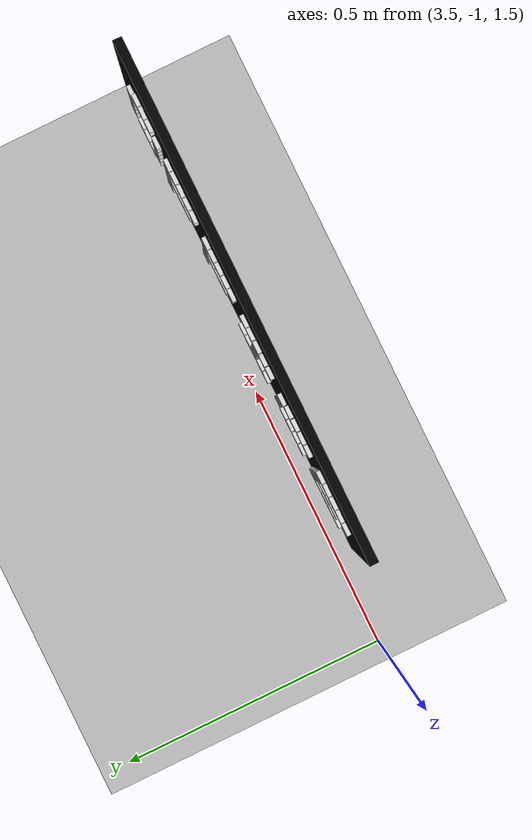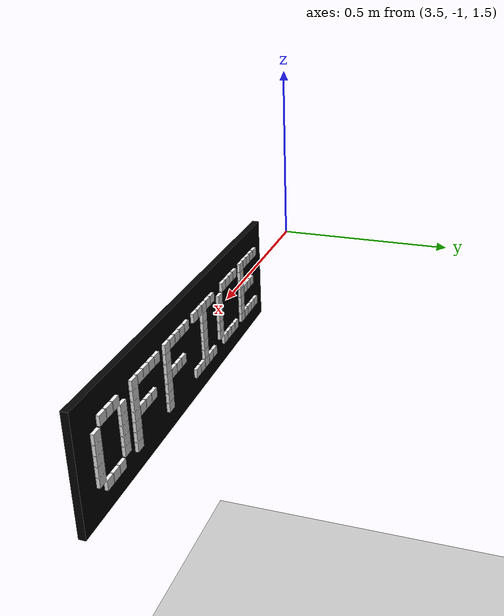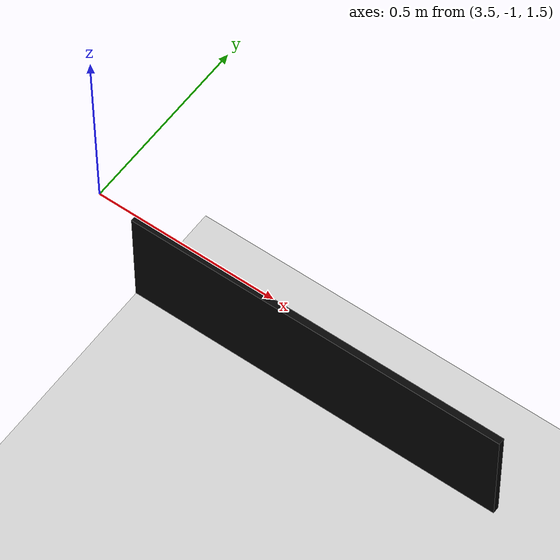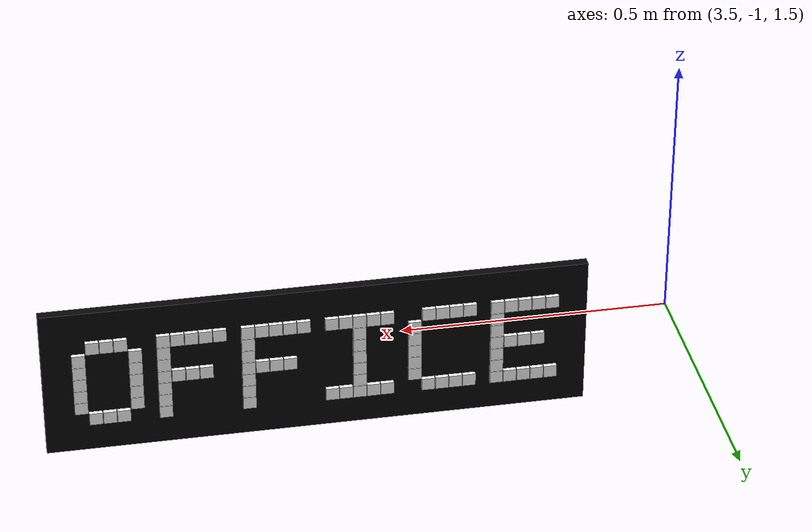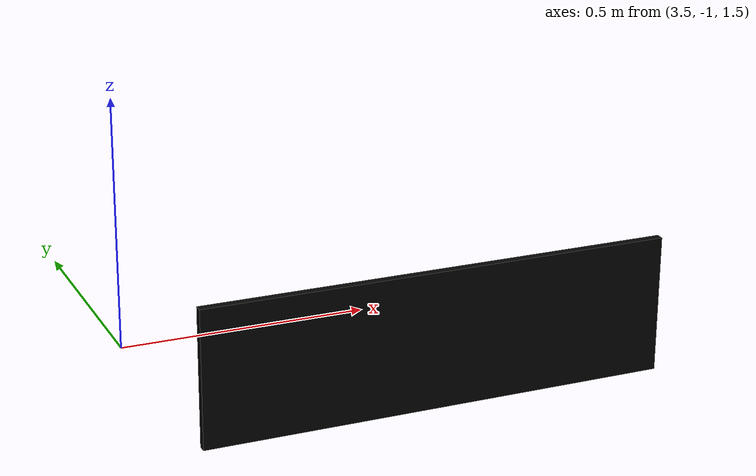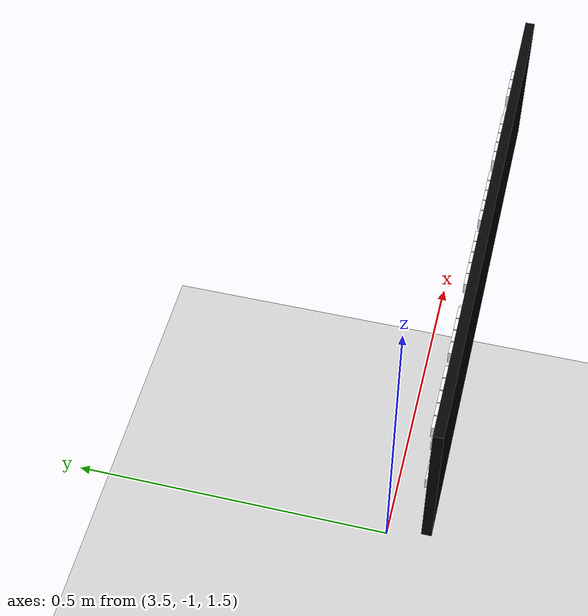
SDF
<sdf version="1.9">
 <world name="default">
  <model name="ground_plane">
   <static>true</static>
   <pose>5.15 0 -0.05 0 0 0</pose>
   <link name="body">
    <collision name="collision"><geometry><box><size>14.3 12 0.1</size></box></geometry></collision>
    <visual name="visual">
     <geometry><box><size>14.3 12 0.1</size></box></geometry>
     <material><ambient>0.8 0.8 0.8 1</ambient><diffuse>0.8 0.8 0.8 1</diffuse></material>
    </visual>
   </link>
  </model>
  <model name="readable_r3geo_base_r009_right_1_entrance_corridor">
   <static>true</static>
   <pose>4.15 -1.05 1.43 0 0 3.14159265359</pose>
   <link name="lettering">
    <visual name="backboard">
     <geometry><box><size>1.02 0.018 0.3</size></box></geometry>
     <material>
      <ambient>.015 .015 .015 1</ambient>
      <diffuse>.015 .015 .015 1</diffuse>
      <emissive>.015 .015 .015 1</emissive>
     </material>
     <cast_shadows>false</cast_shadows>
    </visual>
    <visual name="letter_0_0_1">
     <pose>-0.416 -0.014 0.078 0 0 0</pose>
     <geometry><box><size>0.024439999999999996 0.008 0.024439999999999996</size></box></geometry>
     <material>
      <ambient>.96 .96 .96 1</ambient>
      <diffuse>.96 .96 .96 1</diffuse>
      <emissive>.96 .96 .96 1</emissive>
     </material>
     <cast_shadows>false</cast_shadows>
    </visual>
    <visual name="letter_0_0_2">
     <pose>-0.39 -0.014 0.078 0 0 0</pose>
     <geometry><box><size>0.024439999999999996 0.008 0.024439999999999996</size></box></geometry>
     <material>
      <ambient>.96 .96 .96 1</ambient>
      <diffuse>.96 .96 .96 1</diffuse>
      <emissive>.96 .96 .96 1</emissive>
     </material>
     <cast_shadows>false</cast_shadows>
    </visual>
    <visual name="letter_0_0_3">
     <pose>-0.364 -0.014 0.078 0 0 0</pose>
     <geometry><box><size>0.024439999999999996 0.008 0.024439999999999996</size></box></geometry>
     <material>
      <ambient>.96 .96 .96 1</ambient>
      <diffuse>.96 .96 .96 1</diffuse>
      <emissive>.96 .96 .96 1</emissive>
     </material>
     <cast_shadows>false</cast_shadows>
    </visual>
    <visual name="letter_0_1_0">
     <pose>-0.442 -0.014 0.052 0 0 0</pose>
     <geometry><box><size>0.024439999999999996 0.008 0.024439999999999996</size></box></geometry>
     <material>
      <ambient>.96 .96 .96 1</ambient>
      <diffuse>.96 .96 .96 1</diffuse>
      <emissive>.96 .96 .96 1</emissive>
     </material>
     <cast_shadows>false</cast_shadows>
    </visual>
    <visual name="letter_0_1_4">
     <pose>-0.338 -0.014 0.052 0 0 0</pose>
     <geometry><box><size>0.024439999999999996 0.008 0.024439999999999996</size></box></geometry>
     <material>
      <ambient>.96 .96 .96 1</ambient>
      <diffuse>.96 .96 .96 1</diffuse>
      <emissive>.96 .96 .96 1</emissive>
     </material>
     <cast_shadows>false</cast_shadows>
    </visual>
    <visual name="letter_0_2_0">
     <pose>-0.442 -0.014 0.026 0 0 0</pose>
     <geometry><box><size>0.024439999999999996 0.008 0.024439999999999996</size></box></geometry>
     <material>
      <ambient>.96 .96 .96 1</ambient>
      <diffuse>.96 .96 .96 1</diffuse>
      <emissive>.96 .96 .96 1</emissive>
     </material>
     <cast_shadows>false</cast_shadows>
    </visual>
    <visual name="letter_0_2_4">
     <pose>-0.338 -0.014 0.026 0 0 0</pose>
     <geometry><box><size>0.024439999999999996 0.008 0.024439999999999996</size></box></geometry>
     <material>
      <ambient>.96 .96 .96 1</ambient>
      <diffuse>.96 .96 .96 1</diffuse>
      <emissive>.96 .96 .96 1</emissive>
     </material>
     <cast_shadows>false</cast_shadows>
    </visual>
    <visual name="letter_0_3_0">
     <pose>-0.442 -0.014 0 0 0 0</pose>
     <geometry><box><size>0.024439999999999996 0.008 0.024439999999999996</size></box></geometry>
     <material>
      <ambient>.96 .96 .96 1</ambient>
      <diffuse>.96 .96 .96 1</diffuse>
      <emissive>.96 .96 .96 1</emissive>
     </material>
     <cast_shadows>false</cast_shadows>
    </visual>
    <visual name="letter_0_3_4">
     <pose>-0.338 -0.014 0 0 0 0</pose>
     <geometry><box><size>0.024439999999999996 0.008 0.024439999999999996</size></box></geometry>
     <material>
      <ambient>.96 .96 .96 1</ambient>
      <diffuse>.96 .96 .96 1</diffuse>
      <emissive>.96 .96 .96 1</emissive>
     </material>
     <cast_shadows>false</cast_shadows>
    </visual>
    <visual name="letter_0_4_0">
     <pose>-0.442 -0.014 -0.026 0 0 0</pose>
     <geometry><box><size>0.024439999999999996 0.008 0.024439999999999996</size></box></geometry>
     <material>
      <ambient>.96 .96 .96 1</ambient>
      <diffuse>.96 .96 .96 1</diffuse>
      <emissive>.96 .96 .96 1</emissive>
     </material>
     <cast_shadows>false</cast_shadows>
    </visual>
    <visual name="letter_0_4_4">
     <pose>-0.338 -0.014 -0.026 0 0 0</pose>
     <geometry><box><size>0.024439999999999996 0.008 0.024439999999999996</size></box></geometry>
     <material>
      <ambient>.96 .96 .96 1</ambient>
      <diffuse>.96 .96 .96 1</diffuse>
      <emissive>.96 .96 .96 1</emissive>
     </material>
     <cast_shadows>false</cast_shadows>
    </visual>
    <visual name="letter_0_5_0">
     <pose>-0.442 -0.014 -0.052 0 0 0</pose>
     <geometry><box><size>0.024439999999999996 0.008 0.024439999999999996</size></box></geometry>
     <material>
      <ambient>.96 .96 .96 1</ambient>
      <diffuse>.96 .96 .96 1</diffuse>
      <emissive>.96 .96 .96 1</emissive>
     </material>
     <cast_shadows>false</cast_shadows>
    </visual>
    <visual name="letter_0_5_4">
     <pose>-0.338 -0.014 -0.052 0 0 0</pose>
     <geometry><box><size>0.024439999999999996 0.008 0.024439999999999996</size></box></geometry>
     <material>
      <ambient>.96 .96 .96 1</ambient>
      <diffuse>.96 .96 .96 1</diffuse>
      <emissive>.96 .96 .96 1</emissive>
     </material>
     <cast_shadows>false</cast_shadows>
    </visual>
    <visual name="letter_0_6_1">
     <pose>-0.416 -0.014 -0.078 0 0 0</pose>
     <geometry><box><size>0.024439999999999996 0.008 0.024439999999999996</size></box></geometry>
     <material>
      <ambient>.96 .96 .96 1</ambient>
      <diffuse>.96 .96 .96 1</diffuse>
      <emissive>.96 .96 .96 1</emissive>
     </material>
     <cast_shadows>false</cast_shadows>
    </visual>
    <visual name="letter_0_6_2">
     <pose>-0.39 -0.014 -0.078 0 0 0</pose>
     <geometry><box><size>0.024439999999999996 0.008 0.024439999999999996</size></box></geometry>
     <material>
      <ambient>.96 .96 .96 1</ambient>
      <diffuse>.96 .96 .96 1</diffuse>
      <emissive>.96 .96 .96 1</emissive>
     </material>
     <cast_shadows>false</cast_shadows>
    </visual>
    <visual name="letter_0_6_3">
     <pose>-0.364 -0.014 -0.078 0 0 0</pose>
     <geometry><box><size>0.024439999999999996 0.008 0.024439999999999996</size></box></geometry>
     <material>
      <ambient>.96 .96 .96 1</ambient>
      <diffuse>.96 .96 .96 1</diffuse>
      <emissive>.96 .96 .96 1</emissive>
     </material>
     <cast_shadows>false</cast_shadows>
    </visual>
    <visual name="letter_1_0_0">
     <pose>-0.286 -0.014 0.078 0 0 0</pose>
     <geometry><box><size>0.024439999999999996 0.008 0.024439999999999996</size></box></geometry>
     <material>
      <ambient>.96 .96 .96 1</ambient>
      <diffuse>.96 .96 .96 1</diffuse>
      <emissive>.96 .96 .96 1</emissive>
     </material>
     <cast_shadows>false</cast_shadows>
    </visual>
    <visual name="letter_1_0_1">
     <pose>-0.26 -0.014 0.078 0 0 0</pose>
     <geometry><box><size>0.024439999999999996 0.008 0.024439999999999996</size></box></geometry>
     <material>
      <ambient>.96 .96 .96 1</ambient>
      <diffuse>.96 .96 .96 1</diffuse>
      <emissive>.96 .96 .96 1</emissive>
     </material>
     <cast_shadows>false</cast_shadows>
    </visual>
    <visual name="letter_1_0_2">
     <pose>-0.234 -0.014 0.078 0 0 0</pose>
     <geometry><box><size>0.024439999999999996 0.008 0.024439999999999996</size></box></geometry>
     <material>
      <ambient>.96 .96 .96 1</ambient>
      <diffuse>.96 .96 .96 1</diffuse>
      <emissive>.96 .96 .96 1</emissive>
     </material>
     <cast_shadows>false</cast_shadows>
    </visual>
    <visual name="letter_1_0_3">
     <pose>-0.208 -0.014 0.078 0 0 0</pose>
     <geometry><box><size>0.024439999999999996 0.008 0.024439999999999996</size></box></geometry>
     <material>
      <ambient>.96 .96 .96 1</ambient>
      <diffuse>.96 .96 .96 1</diffuse>
      <emissive>.96 .96 .96 1</emissive>
     </material>
     <cast_shadows>false</cast_shadows>
    </visual>
    <visual name="letter_1_0_4">
     <pose>-0.182 -0.014 0.078 0 0 0</pose>
     <geometry><box><size>0.024439999999999996 0.008 0.024439999999999996</size></box></geometry>
     <material>
      <ambient>.96 .96 .96 1</ambient>
      <diffuse>.96 .96 .96 1</diffuse>
      <emissive>.96 .96 .96 1</emissive>
     </material>
     <cast_shadows>false</cast_shadows>
    </visual>
    <visual name="letter_1_1_0">
     <pose>-0.286 -0.014 0.052 0 0 0</pose>
     <geometry><box><size>0.024439999999999996 0.008 0.024439999999999996</size></box></geometry>
     <material>
      <ambient>.96 .96 .96 1</ambient>
      <diffuse>.96 .96 .96 1</diffuse>
      <emissive>.96 .96 .96 1</emissive>
     </material>
     <cast_shadows>false</cast_shadows>
    </visual>
    <visual name="letter_1_2_0">
     <pose>-0.286 -0.014 0.026 0 0 0</pose>
     <geometry><box><size>0.024439999999999996 0.008 0.024439999999999996</size></box></geometry>
     <material>
      <ambient>.96 .96 .96 1</ambient>
      <diffuse>.96 .96 .96 1</diffuse>
      <emissive>.96 .96 .96 1</emissive>
     </material>
     <cast_shadows>false</cast_shadows>
    </visual>
    <visual name="letter_1_3_0">
     <pose>-0.286 -0.014 0 0 0 0</pose>
     <geometry><box><size>0.024439999999999996 0.008 0.024439999999999996</size></box></geometry>
     <material>
      <ambient>.96 .96 .96 1</ambient>
      <diffuse>.96 .96 .96 1</diffuse>
      <emissive>.96 .96 .96 1</emissive>
     </material>
     <cast_shadows>false</cast_shadows>
    </visual>
    <visual name="letter_1_3_1">
     <pose>-0.26 -0.014 0 0 0 0</pose>
     <geometry><box><size>0.024439999999999996 0.008 0.024439999999999996</size></box></geometry>
     <material>
      <ambient>.96 .96 .96 1</ambient>
      <diffuse>.96 .96 .96 1</diffuse>
      <emissive>.96 .96 .96 1</emissive>
     </material>
     <cast_shadows>false</cast_shadows>
    </visual>
    <visual name="letter_1_3_2">
     <pose>-0.234 -0.014 0 0 0 0</pose>
     <geometry><box><size>0.024439999999999996 0.008 0.024439999999999996</size></box></geometry>
     <material>
      <ambient>.96 .96 .96 1</ambient>
      <diffuse>.96 .96 .96 1</diffuse>
      <emissive>.96 .96 .96 1</emissive>
     </material>
     <cast_shadows>false</cast_shadows>
    </visual>
    <visual name="letter_1_3_3">
     <pose>-0.208 -0.014 0 0 0 0</pose>
     <geometry><box><size>0.024439999999999996 0.008 0.024439999999999996</size></box></geometry>
     <material>
      <ambient>.96 .96 .96 1</ambient>
      <diffuse>.96 .96 .96 1</diffuse>
      <emissive>.96 .96 .96 1</emissive>
     </material>
     <cast_shadows>false</cast_shadows>
    </visual>
    <visual name="letter_1_4_0">
     <pose>-0.286 -0.014 -0.026 0 0 0</pose>
     <geometry><box><size>0.024439999999999996 0.008 0.024439999999999996</size></box></geometry>
     <material>
      <ambient>.96 .96 .96 1</ambient>
      <diffuse>.96 .96 .96 1</diffuse>
      <emissive>.96 .96 .96 1</emissive>
     </material>
     <cast_shadows>false</cast_shadows>
    </visual>
    <visual name="letter_1_5_0">
     <pose>-0.286 -0.014 -0.052 0 0 0</pose>
     <geometry><box><size>0.024439999999999996 0.008 0.024439999999999996</size></box></geometry>
     <material>
      <ambient>.96 .96 .96 1</ambient>
      <diffuse>.96 .96 .96 1</diffuse>
      <emissive>.96 .96 .96 1</emissive>
     </material>
     <cast_shadows>false</cast_shadows>
    </visual>
    <visual name="letter_1_6_0">
     <pose>-0.286 -0.014 -0.078 0 0 0</pose>
     <geometry><box><size>0.024439999999999996 0.008 0.024439999999999996</size></box></geometry>
     <material>
      <ambient>.96 .96 .96 1</ambient>
      <diffuse>.96 .96 .96 1</diffuse>
      <emissive>.96 .96 .96 1</emissive>
     </material>
     <cast_shadows>false</cast_shadows>
    </visual>
    <visual name="letter_2_0_0">
     <pose>-0.13 -0.014 0.078 0 0 0</pose>
     <geometry><box><size>0.024439999999999996 0.008 0.024439999999999996</size></box></geometry>
     <material>
      <ambient>.96 .96 .96 1</ambient>
      <diffuse>.96 .96 .96 1</diffuse>
      <emissive>.96 .96 .96 1</emissive>
     </material>
     <cast_shadows>false</cast_shadows>
    </visual>
    <visual name="letter_2_0_1">
     <pose>-0.104 -0.014 0.078 0 0 0</pose>
     <geometry><box><size>0.024439999999999996 0.008 0.024439999999999996</size></box></geometry>
     <material>
      <ambient>.96 .96 .96 1</ambient>
      <diffuse>.96 .96 .96 1</diffuse>
      <emissive>.96 .96 .96 1</emissive>
     </material>
     <cast_shadows>false</cast_shadows>
    </visual>
    <visual name="letter_2_0_2">
     <pose>-0.078 -0.014 0.078 0 0 0</pose>
     <geometry><box><size>0.024439999999999996 0.008 0.024439999999999996</size></box></geometry>
     <material>
      <ambient>.96 .96 .96 1</ambient>
      <diffuse>.96 .96 .96 1</diffuse>
      <emissive>.96 .96 .96 1</emissive>
     </material>
     <cast_shadows>false</cast_shadows>
    </visual>
    <visual name="letter_2_0_3">
     <pose>-0.052 -0.014 0.078 0 0 0</pose>
     <geometry><box><size>0.024439999999999996 0.008 0.024439999999999996</size></box></geometry>
     <material>
      <ambient>.96 .96 .96 1</ambient>
      <diffuse>.96 .96 .96 1</diffuse>
      <emissive>.96 .96 .96 1</emissive>
     </material>
     <cast_shadows>false</cast_shadows>
    </visual>
    <visual name="letter_2_0_4">
     <pose>-0.026 -0.014 0.078 0 0 0</pose>
     <geometry><box><size>0.024439999999999996 0.008 0.024439999999999996</size></box></geometry>
     <material>
      <ambient>.96 .96 .96 1</ambient>
      <diffuse>.96 .96 .96 1</diffuse>
      <emissive>.96 .96 .96 1</emissive>
     </material>
     <cast_shadows>false</cast_shadows>
    </visual>
    <visual name="letter_2_1_0">
     <pose>-0.13 -0.014 0.052 0 0 0</pose>
     <geometry><box><size>0.024439999999999996 0.008 0.024439999999999996</size></box></geometry>
     <material>
      <ambient>.96 .96 .96 1</ambient>
      <diffuse>.96 .96 .96 1</diffuse>
      <emissive>.96 .96 .96 1</emissive>
     </material>
     <cast_shadows>false</cast_shadows>
    </visual>
    <visual name="letter_2_2_0">
     <pose>-0.13 -0.014 0.026 0 0 0</pose>
     <geometry><box><size>0.024439999999999996 0.008 0.024439999999999996</size></box></geometry>
     <material>
      <ambient>.96 .96 .96 1</ambient>
      <diffuse>.96 .96 .96 1</diffuse>
      <emissive>.96 .96 .96 1</emissive>
     </material>
     <cast_shadows>false</cast_shadows>
    </visual>
    <visual name="letter_2_3_0">
     <pose>-0.13 -0.014 0 0 0 0</pose>
     <geometry><box><size>0.024439999999999996 0.008 0.024439999999999996</size></box></geometry>
     <material>
      <ambient>.96 .96 .96 1</ambient>
      <diffuse>.96 .96 .96 1</diffuse>
      <emissive>.96 .96 .96 1</emissive>
     </material>
     <cast_shadows>false</cast_shadows>
    </visual>
    <visual name="letter_2_3_1">
     <pose>-0.104 -0.014 0 0 0 0</pose>
     <geometry><box><size>0.024439999999999996 0.008 0.024439999999999996</size></box></geometry>
     <material>
      <ambient>.96 .96 .96 1</ambient>
      <diffuse>.96 .96 .96 1</diffuse>
      <emissive>.96 .96 .96 1</emissive>
     </material>
     <cast_shadows>false</cast_shadows>
    </visual>
    <visual name="letter_2_3_2">
     <pose>-0.078 -0.014 0 0 0 0</pose>
     <geometry><box><size>0.024439999999999996 0.008 0.024439999999999996</size></box></geometry>
     <material>
      <ambient>.96 .96 .96 1</ambient>
      <diffuse>.96 .96 .96 1</diffuse>
      <emissive>.96 .96 .96 1</emissive>
     </material>
     <cast_shadows>false</cast_shadows>
    </visual>
    <visual name="letter_2_3_3">
     <pose>-0.052 -0.014 0 0 0 0</pose>
     <geometry><box><size>0.024439999999999996 0.008 0.024439999999999996</size></box></geometry>
     <material>
      <ambient>.96 .96 .96 1</ambient>
      <diffuse>.96 .96 .96 1</diffuse>
      <emissive>.96 .96 .96 1</emissive>
     </material>
     <cast_shadows>false</cast_shadows>
    </visual>
    <visual name="letter_2_4_0">
     <pose>-0.13 -0.014 -0.026 0 0 0</pose>
     <geometry><box><size>0.024439999999999996 0.008 0.024439999999999996</size></box></geometry>
     <material>
      <ambient>.96 .96 .96 1</ambient>
      <diffuse>.96 .96 .96 1</diffuse>
      <emissive>.96 .96 .96 1</emissive>
     </material>
     <cast_shadows>false</cast_shadows>
    </visual>
    <visual name="letter_2_5_0">
     <pose>-0.13 -0.014 -0.052 0 0 0</pose>
     <geometry><box><size>0.024439999999999996 0.008 0.024439999999999996</size></box></geometry>
     <material>
      <ambient>.96 .96 .96 1</ambient>
      <diffuse>.96 .96 .96 1</diffuse>
      <emissive>.96 .96 .96 1</emissive>
     </material>
     <cast_shadows>false</cast_shadows>
    </visual>
    <visual name="letter_2_6_0">
     <pose>-0.13 -0.014 -0.078 0 0 0</pose>
     <geometry><box><size>0.024439999999999996 0.008 0.024439999999999996</size></box></geometry>
     <material>
      <ambient>.96 .96 .96 1</ambient>
      <diffuse>.96 .96 .96 1</diffuse>
      <emissive>.96 .96 .96 1</emissive>
     </material>
     <cast_shadows>false</cast_shadows>
    </visual>
    <visual name="letter_3_0_0">
     <pose>0.026 -0.014 0.078 0 0 0</pose>
     <geometry><box><size>0.024439999999999996 0.008 0.024439999999999996</size></box></geometry>
     <material>
      <ambient>.96 .96 .96 1</ambient>
      <diffuse>.96 .96 .96 1</diffuse>
      <emissive>.96 .96 .96 1</emissive>
     </material>
     <cast_shadows>false</cast_shadows>
    </visual>
    <visual name="letter_3_0_1">
     <pose>0.052 -0.014 0.078 0 0 0</pose>
     <geometry><box><size>0.024439999999999996 0.008 0.024439999999999996</size></box></geometry>
     <material>
      <ambient>.96 .96 .96 1</ambient>
      <diffuse>.96 .96 .96 1</diffuse>
      <emissive>.96 .96 .96 1</emissive>
     </material>
     <cast_shadows>false</cast_shadows>
    </visual>
    <visual name="letter_3_0_2">
     <pose>0.078 -0.014 0.078 0 0 0</pose>
     <geometry><box><size>0.024439999999999996 0.008 0.024439999999999996</size></box></geometry>
     <material>
      <ambient>.96 .96 .96 1</ambient>
      <diffuse>.96 .96 .96 1</diffuse>
      <emissive>.96 .96 .96 1</emissive>
     </material>
     <cast_shadows>false</cast_shadows>
    </visual>
    <visual name="letter_3_0_3">
     <pose>0.104 -0.014 0.078 0 0 0</pose>
     <geometry><box><size>0.024439999999999996 0.008 0.024439999999999996</size></box></geometry>
     <material>
      <ambient>.96 .96 .96 1</ambient>
      <diffuse>.96 .96 .96 1</diffuse>
      <emissive>.96 .96 .96 1</emissive>
     </material>
     <cast_shadows>false</cast_shadows>
    </visual>
    <visual name="letter_3_0_4">
     <pose>0.13 -0.014 0.078 0 0 0</pose>
     <geometry><box><size>0.024439999999999996 0.008 0.024439999999999996</size></box></geometry>
     <material>
      <ambient>.96 .96 .96 1</ambient>
      <diffuse>.96 .96 .96 1</diffuse>
      <emissive>.96 .96 .96 1</emissive>
     </material>
     <cast_shadows>false</cast_shadows>
    </visual>
    <visual name="letter_3_1_2">
     <pose>0.078 -0.014 0.052 0 0 0</pose>
     <geometry><box><size>0.024439999999999996 0.008 0.024439999999999996</size></box></geometry>
     <material>
      <ambient>.96 .96 .96 1</ambient>
      <diffuse>.96 .96 .96 1</diffuse>
      <emissive>.96 .96 .96 1</emissive>
     </material>
     <cast_shadows>false</cast_shadows>
    </visual>
    <visual name="letter_3_2_2">
     <pose>0.078 -0.014 0.026 0 0 0</pose>
     <geometry><box><size>0.024439999999999996 0.008 0.024439999999999996</size></box></geometry>
     <material>
      <ambient>.96 .96 .96 1</ambient>
      <diffuse>.96 .96 .96 1</diffuse>
      <emissive>.96 .96 .96 1</emissive>
     </material>
     <cast_shadows>false</cast_shadows>
    </visual>
    <visual name="letter_3_3_2">
     <pose>0.078 -0.014 0 0 0 0</pose>
     <geometry><box><size>0.024439999999999996 0.008 0.024439999999999996</size></box></geometry>
     <material>
      <ambient>.96 .96 .96 1</ambient>
      <diffuse>.96 .96 .96 1</diffuse>
      <emissive>.96 .96 .96 1</emissive>
     </material>
     <cast_shadows>false</cast_shadows>
    </visual>
    <visual name="letter_3_4_2">
     <pose>0.078 -0.014 -0.026 0 0 0</pose>
     <geometry><box><size>0.024439999999999996 0.008 0.024439999999999996</size></box></geometry>
     <material>
      <ambient>.96 .96 .96 1</ambient>
      <diffuse>.96 .96 .96 1</diffuse>
      <emissive>.96 .96 .96 1</emissive>
     </material>
     <cast_shadows>false</cast_shadows>
    </visual>
    <visual name="letter_3_5_2">
     <pose>0.078 -0.014 -0.052 0 0 0</pose>
     <geometry><box><size>0.024439999999999996 0.008 0.024439999999999996</size></box></geometry>
     <material>
      <ambient>.96 .96 .96 1</ambient>
      <diffuse>.96 .96 .96 1</diffuse>
      <emissive>.96 .96 .96 1</emissive>
     </material>
     <cast_shadows>false</cast_shadows>
    </visual>
    <visual name="letter_3_6_0">
     <pose>0.026 -0.014 -0.078 0 0 0</pose>
     <geometry><box><size>0.024439999999999996 0.008 0.024439999999999996</size></box></geometry>
     <material>
      <ambient>.96 .96 .96 1</ambient>
      <diffuse>.96 .96 .96 1</diffuse>
      <emissive>.96 .96 .96 1</emissive>
     </material>
     <cast_shadows>false</cast_shadows>
    </visual>
    <visual name="letter_3_6_1">
     <pose>0.052 -0.014 -0.078 0 0 0</pose>
     <geometry><box><size>0.024439999999999996 0.008 0.024439999999999996</size></box></geometry>
     <material>
      <ambient>.96 .96 .96 1</ambient>
      <diffuse>.96 .96 .96 1</diffuse>
      <emissive>.96 .96 .96 1</emissive>
     </material>
     <cast_shadows>false</cast_shadows>
    </visual>
    <visual name="letter_3_6_2">
     <pose>0.078 -0.014 -0.078 0 0 0</pose>
     <geometry><box><size>0.024439999999999996 0.008 0.024439999999999996</size></box></geometry>
     <material>
      <ambient>.96 .96 .96 1</ambient>
      <diffuse>.96 .96 .96 1</diffuse>
      <emissive>.96 .96 .96 1</emissive>
     </material>
     <cast_shadows>false</cast_shadows>
    </visual>
    <visual name="letter_3_6_3">
     <pose>0.104 -0.014 -0.078 0 0 0</pose>
     <geometry><box><size>0.024439999999999996 0.008 0.024439999999999996</size></box></geometry>
     <material>
      <ambient>.96 .96 .96 1</ambient>
      <diffuse>.96 .96 .96 1</diffuse>
      <emissive>.96 .96 .96 1</emissive>
     </material>
     <cast_shadows>false</cast_shadows>
    </visual>
    <visual name="letter_3_6_4">
     <pose>0.13 -0.014 -0.078 0 0 0</pose>
     <geometry><box><size>0.024439999999999996 0.008 0.024439999999999996</size></box></geometry>
     <material>
      <ambient>.96 .96 .96 1</ambient>
      <diffuse>.96 .96 .96 1</diffuse>
      <emissive>.96 .96 .96 1</emissive>
     </material>
     <cast_shadows>false</cast_shadows>
    </visual>
    <visual name="letter_4_0_1">
     <pose>0.208 -0.014 0.078 0 0 0</pose>
     <geometry><box><size>0.024439999999999996 0.008 0.024439999999999996</size></box></geometry>
     <material>
      <ambient>.96 .96 .96 1</ambient>
      <diffuse>.96 .96 .96 1</diffuse>
      <emissive>.96 .96 .96 1</emissive>
     </material>
     <cast_shadows>false</cast_shadows>
    </visual>
    <visual name="letter_4_0_2">
     <pose>0.234 -0.014 0.078 0 0 0</pose>
     <geometry><box><size>0.024439999999999996 0.008 0.024439999999999996</size></box></geometry>
     <material>
      <ambient>.96 .96 .96 1</ambient>
      <diffuse>.96 .96 .96 1</diffuse>
      <emissive>.96 .96 .96 1</emissive>
     </material>
     <cast_shadows>false</cast_shadows>
    </visual>
    <visual name="letter_4_0_3">
     <pose>0.26 -0.014 0.078 0 0 0</pose>
     <geometry><box><size>0.024439999999999996 0.008 0.024439999999999996</size></box></geometry>
     <material>
      <ambient>.96 .96 .96 1</ambient>
      <diffuse>.96 .96 .96 1</diffuse>
      <emissive>.96 .96 .96 1</emissive>
     </material>
     <cast_shadows>false</cast_shadows>
    </visual>
    <visual name="letter_4_0_4">
     <pose>0.286 -0.014 0.078 0 0 0</pose>
     <geometry><box><size>0.024439999999999996 0.008 0.024439999999999996</size></box></geometry>
     <material>
      <ambient>.96 .96 .96 1</ambient>
      <diffuse>.96 .96 .96 1</diffuse>
      <emissive>.96 .96 .96 1</emissive>
     </material>
     <cast_shadows>false</cast_shadows>
    </visual>
    <visual name="letter_4_1_0">
     <pose>0.182 -0.014 0.052 0 0 0</pose>
     <geometry><box><size>0.024439999999999996 0.008 0.024439999999999996</size></box></geometry>
     <material>
      <ambient>.96 .96 .96 1</ambient>
      <diffuse>.96 .96 .96 1</diffuse>
      <emissive>.96 .96 .96 1</emissive>
     </material>
     <cast_shadows>false</cast_shadows>
    </visual>
    <visual name="letter_4_2_0">
     <pose>0.182 -0.014 0.026 0 0 0</pose>
     <geometry><box><size>0.024439999999999996 0.008 0.024439999999999996</size></box></geometry>
     <material>
      <ambient>.96 .96 .96 1</ambient>
      <diffuse>.96 .96 .96 1</diffuse>
      <emissive>.96 .96 .96 1</emissive>
     </material>
     <cast_shadows>false</cast_shadows>
    </visual>
    <visual name="letter_4_3_0">
     <pose>0.182 -0.014 0 0 0 0</pose>
     <geometry><box><size>0.024439999999999996 0.008 0.024439999999999996</size></box></geometry>
     <material>
      <ambient>.96 .96 .96 1</ambient>
      <diffuse>.96 .96 .96 1</diffuse>
      <emissive>.96 .96 .96 1</emissive>
     </material>
     <cast_shadows>false</cast_shadows>
    </visual>
    <visual name="letter_4_4_0">
     <pose>0.182 -0.014 -0.026 0 0 0</pose>
     <geometry><box><size>0.024439999999999996 0.008 0.024439999999999996</size></box></geometry>
     <material>
      <ambient>.96 .96 .96 1</ambient>
      <diffuse>.96 .96 .96 1</diffuse>
      <emissive>.96 .96 .96 1</emissive>
     </material>
     <cast_shadows>false</cast_shadows>
    </visual>
    <visual name="letter_4_5_0">
     <pose>0.182 -0.014 -0.052 0 0 0</pose>
     <geometry><box><size>0.024439999999999996 0.008 0.024439999999999996</size></box></geometry>
     <material>
      <ambient>.96 .96 .96 1</ambient>
      <diffuse>.96 .96 .96 1</diffuse>
      <emissive>.96 .96 .96 1</emissive>
     </material>
     <cast_shadows>false</cast_shadows>
    </visual>
    <visual name="letter_4_6_1">
     <pose>0.208 -0.014 -0.078 0 0 0</pose>
     <geometry><box><size>0.024439999999999996 0.008 0.024439999999999996</size></box></geometry>
     <material>
      <ambient>.96 .96 .96 1</ambient>
      <diffuse>.96 .96 .96 1</diffuse>
      <emissive>.96 .96 .96 1</emissive>
     </material>
     <cast_shadows>false</cast_shadows>
    </visual>
    <visual name="letter_4_6_2">
     <pose>0.234 -0.014 -0.078 0 0 0</pose>
     <geometry><box><size>0.024439999999999996 0.008 0.024439999999999996</size></box></geometry>
     <material>
      <ambient>.96 .96 .96 1</ambient>
      <diffuse>.96 .96 .96 1</diffuse>
      <emissive>.96 .96 .96 1</emissive>
     </material>
     <cast_shadows>false</cast_shadows>
    </visual>
    <visual name="letter_4_6_3">
     <pose>0.26 -0.014 -0.078 0 0 0</pose>
     <geometry><box><size>0.024439999999999996 0.008 0.024439999999999996</size></box></geometry>
     <material>
      <ambient>.96 .96 .96 1</ambient>
      <diffuse>.96 .96 .96 1</diffuse>
      <emissive>.96 .96 .96 1</emissive>
     </material>
     <cast_shadows>false</cast_shadows>
    </visual>
    <visual name="letter_4_6_4">
     <pose>0.286 -0.014 -0.078 0 0 0</pose>
     <geometry><box><size>0.024439999999999996 0.008 0.024439999999999996</size></box></geometry>
     <material>
      <ambient>.96 .96 .96 1</ambient>
      <diffuse>.96 .96 .96 1</diffuse>
      <emissive>.96 .96 .96 1</emissive>
     </material>
     <cast_shadows>false</cast_shadows>
    </visual>
    <visual name="letter_5_0_0">
     <pose>0.338 -0.014 0.078 0 0 0</pose>
     <geometry><box><size>0.024439999999999996 0.008 0.024439999999999996</size></box></geometry>
     <material>
      <ambient>.96 .96 .96 1</ambient>
      <diffuse>.96 .96 .96 1</diffuse>
      <emissive>.96 .96 .96 1</emissive>
     </material>
     <cast_shadows>false</cast_shadows>
    </visual>
    <visual name="letter_5_0_1">
     <pose>0.364 -0.014 0.078 0 0 0</pose>
     <geometry><box><size>0.024439999999999996 0.008 0.024439999999999996</size></box></geometry>
     <material>
      <ambient>.96 .96 .96 1</ambient>
      <diffuse>.96 .96 .96 1</diffuse>
      <emissive>.96 .96 .96 1</emissive>
     </material>
     <cast_shadows>false</cast_shadows>
    </visual>
    <visual name="letter_5_0_2">
     <pose>0.39 -0.014 0.078 0 0 0</pose>
     <geometry><box><size>0.024439999999999996 0.008 0.024439999999999996</size></box></geometry>
     <material>
      <ambient>.96 .96 .96 1</ambient>
      <diffuse>.96 .96 .96 1</diffuse>
      <emissive>.96 .96 .96 1</emissive>
     </material>
     <cast_shadows>false</cast_shadows>
    </visual>
    <visual name="letter_5_0_3">
     <pose>0.416 -0.014 0.078 0 0 0</pose>
     <geometry><box><size>0.024439999999999996 0.008 0.024439999999999996</size></box></geometry>
     <material>
      <ambient>.96 .96 .96 1</ambient>
      <diffuse>.96 .96 .96 1</diffuse>
      <emissive>.96 .96 .96 1</emissive>
     </material>
     <cast_shadows>false</cast_shadows>
    </visual>
    <visual name="letter_5_0_4">
     <pose>0.442 -0.014 0.078 0 0 0</pose>
     <geometry><box><size>0.024439999999999996 0.008 0.024439999999999996</size></box></geometry>
     <material>
      <ambient>.96 .96 .96 1</ambient>
      <diffuse>.96 .96 .96 1</diffuse>
      <emissive>.96 .96 .96 1</emissive>
     </material>
     <cast_shadows>false</cast_shadows>
    </visual>
    <visual name="letter_5_1_0">
     <pose>0.338 -0.014 0.052 0 0 0</pose>
     <geometry><box><size>0.024439999999999996 0.008 0.024439999999999996</size></box></geometry>
     <material>
      <ambient>.96 .96 .96 1</ambient>
      <diffuse>.96 .96 .96 1</diffuse>
      <emissive>.96 .96 .96 1</emissive>
     </material>
     <cast_shadows>false</cast_shadows>
    </visual>
    <visual name="letter_5_2_0">
     <pose>0.338 -0.014 0.026 0 0 0</pose>
     <geometry><box><size>0.024439999999999996 0.008 0.024439999999999996</size></box></geometry>
     <material>
      <ambient>.96 .96 .96 1</ambient>
      <diffuse>.96 .96 .96 1</diffuse>
      <emissive>.96 .96 .96 1</emissive>
     </material>
     <cast_shadows>false</cast_shadows>
    </visual>
    <visual name="letter_5_3_0">
     <pose>0.338 -0.014 0 0 0 0</pose>
     <geometry><box><size>0.024439999999999996 0.008 0.024439999999999996</size></box></geometry>
     <material>
      <ambient>.96 .96 .96 1</ambient>
      <diffuse>.96 .96 .96 1</diffuse>
      <emissive>.96 .96 .96 1</emissive>
     </material>
     <cast_shadows>false</cast_shadows>
    </visual>
    <visual name="letter_5_3_1">
     <pose>0.364 -0.014 0 0 0 0</pose>
     <geometry><box><size>0.024439999999999996 0.008 0.024439999999999996</size></box></geometry>
     <material>
      <ambient>.96 .96 .96 1</ambient>
      <diffuse>.96 .96 .96 1</diffuse>
      <emissive>.96 .96 .96 1</emissive>
     </material>
     <cast_shadows>false</cast_shadows>
    </visual>
    <visual name="letter_5_3_2">
     <pose>0.39 -0.014 0 0 0 0</pose>
     <geometry><box><size>0.024439999999999996 0.008 0.024439999999999996</size></box></geometry>
     <material>
      <ambient>.96 .96 .96 1</ambient>
      <diffuse>.96 .96 .96 1</diffuse>
      <emissive>.96 .96 .96 1</emissive>
     </material>
     <cast_shadows>false</cast_shadows>
    </visual>
    <visual name="letter_5_3_3">
     <pose>0.416 -0.014 0 0 0 0</pose>
     <geometry><box><size>0.024439999999999996 0.008 0.024439999999999996</size></box></geometry>
     <material>
      <ambient>.96 .96 .96 1</ambient>
      <diffuse>.96 .96 .96 1</diffuse>
      <emissive>.96 .96 .96 1</emissive>
     </material>
     <cast_shadows>false</cast_shadows>
    </visual>
    <visual name="letter_5_4_0">
     <pose>0.338 -0.014 -0.026 0 0 0</pose>
     <geometry><box><size>0.024439999999999996 0.008 0.024439999999999996</size></box></geometry>
     <material>
      <ambient>.96 .96 .96 1</ambient>
      <diffuse>.96 .96 .96 1</diffuse>
      <emissive>.96 .96 .96 1</emissive>
     </material>
     <cast_shadows>false</cast_shadows>
    </visual>
    <visual name="letter_5_5_0">
     <pose>0.338 -0.014 -0.052 0 0 0</pose>
     <geometry><box><size>0.024439999999999996 0.008 0.024439999999999996</size></box></geometry>
     <material>
      <ambient>.96 .96 .96 1</ambient>
      <diffuse>.96 .96 .96 1</diffuse>
      <emissive>.96 .96 .96 1</emissive>
     </material>
     <cast_shadows>false</cast_shadows>
    </visual>
    <visual name="letter_5_6_0">
     <pose>0.338 -0.014 -0.078 0 0 0</pose>
     <geometry><box><size>0.024439999999999996 0.008 0.024439999999999996</size></box></geometry>
     <material>
      <ambient>.96 .96 .96 1</ambient>
      <diffuse>.96 .96 .96 1</diffuse>
      <emissive>.96 .96 .96 1</emissive>
     </material>
     <cast_shadows>false</cast_shadows>
    </visual>
    <visual name="letter_5_6_1">
     <pose>0.364 -0.014 -0.078 0 0 0</pose>
     <geometry><box><size>0.024439999999999996 0.008 0.024439999999999996</size></box></geometry>
     <material>
      <ambient>.96 .96 .96 1</ambient>
      <diffuse>.96 .96 .96 1</diffuse>
      <emissive>.96 .96 .96 1</emissive>
     </material>
     <cast_shadows>false</cast_shadows>
    </visual>
    <visual name="letter_5_6_2">
     <pose>0.39 -0.014 -0.078 0 0 0</pose>
     <geometry><box><size>0.024439999999999996 0.008 0.024439999999999996</size></box></geometry>
     <material>
      <ambient>.96 .96 .96 1</ambient>
      <diffuse>.96 .96 .96 1</diffuse>
      <emissive>.96 .96 .96 1</emissive>
     </material>
     <cast_shadows>false</cast_shadows>
    </visual>
    <visual name="letter_5_6_3">
     <pose>0.416 -0.014 -0.078 0 0 0</pose>
     <geometry><box><size>0.024439999999999996 0.008 0.024439999999999996</size></box></geometry>
     <material>
      <ambient>.96 .96 .96 1</ambient>
      <diffuse>.96 .96 .96 1</diffuse>
      <emissive>.96 .96 .96 1</emissive>
     </material>
     <cast_shadows>false</cast_shadows>
    </visual>
    <visual name="letter_5_6_4">
     <pose>0.442 -0.014 -0.078 0 0 0</pose>
     <geometry><box><size>0.024439999999999996 0.008 0.024439999999999996</size></box></geometry>
     <material>
      <ambient>.96 .96 .96 1</ambient>
      <diffuse>.96 .96 .96 1</diffuse>
      <emissive>.96 .96 .96 1</emissive>
     </material>
     <cast_shadows>false</cast_shadows>
    </visual>
   </link>
  </model>
 </world>
</sdf>
